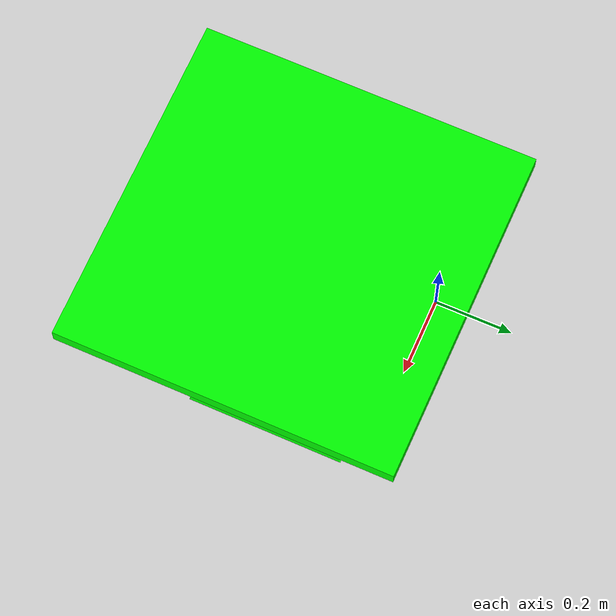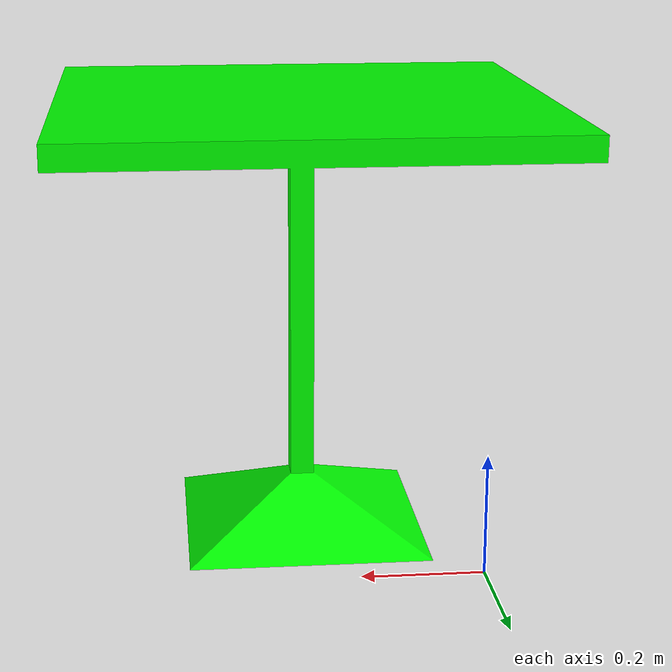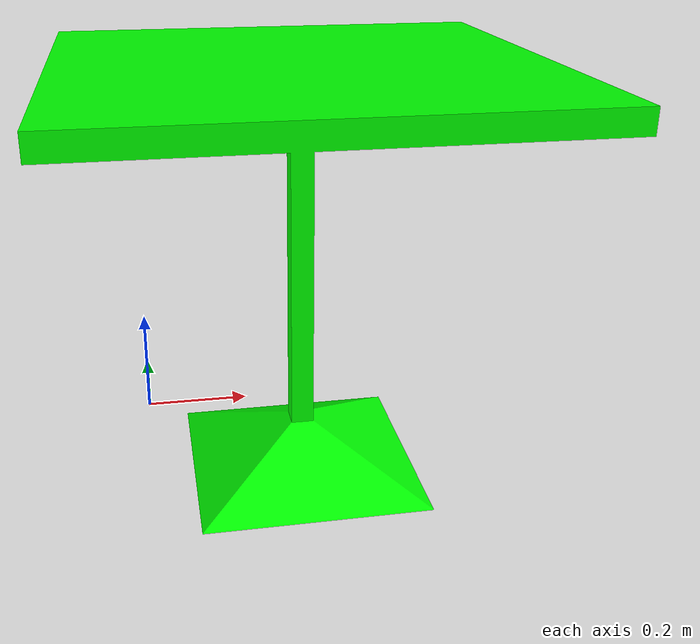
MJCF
<mujoco model="custom_table">
  <worldbody>
    <body name="custom_table">
      <body name="collision">
        <geom pos="0 0 0" mesh="custom_table" type="mesh" density="5000" rgba="0 1 0 1" group="1" condim="6"/>
      </body>
      <body name="visual">
        <geom pos="0 0 0" mesh="custom_table" type="mesh" rgba="0 1 0 1" conaffinity="0" contype="0" group="0" mass="0.0001"/>
      </body>
      <site rgba="0 0 0 0" size="0.005" pos="0 0 -0.06" name="bottom_site"/>
      <site rgba="0 0 0 0" size="0.005" pos="0 0 0.04" name="top_site"/>
      <site rgba="0 0 0 0" size="0.005" pos="0.025 0.025 0" name="horizontal_radius_site"/>
    </body>
  </worldbody>
  <asset>
    <mesh file="meshes/custom_table.stl" name="custom_table" scale="0.01 0.01 0.01"/>
  </asset>
</mujoco>
